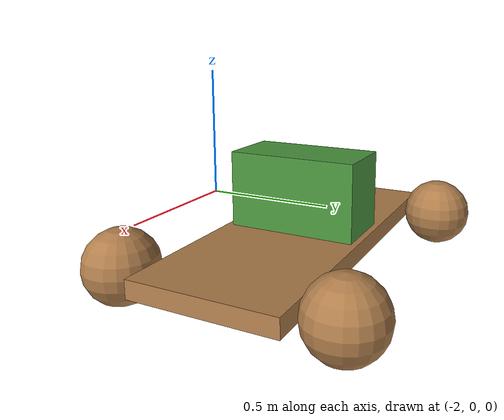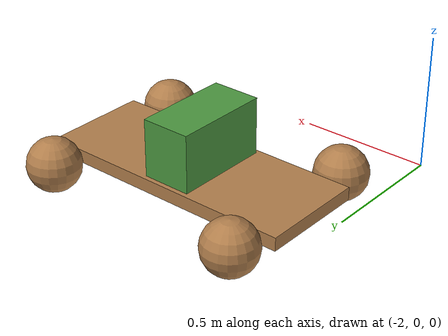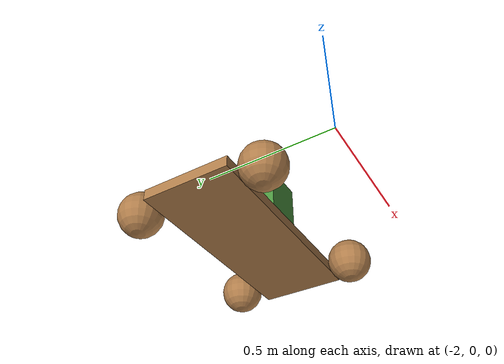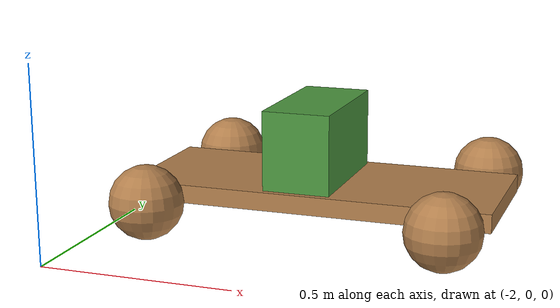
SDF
<?xml version='1.0'?>
<sdf version='1.6'>
  <model name='myRob'>
    <link name='base'>
      <pose frame=''>-1.48306 0.642455 0.078333 0 -0 0</pose>
      <inertial>
        <mass>1</mass>
        <inertia>
          <ixx>0.166667</ixx>
          <ixy>0</ixy>
          <ixz>0</ixz>
          <iyy>0.166667</iyy>
          <iyz>0</iyz>
          <izz>0.166667</izz>
        </inertia>
        <pose frame=''>0 0 0.1 0 -0 0</pose>
      </inertial>
      <gravity>1</gravity>
      <self_collide>0</self_collide>
      <kinematic>0</kinematic>
      <visual name='visual'>
        <pose frame=''>0 0 0 0 -0 0</pose>
        <geometry>
          <box>
            <size>1 0.4 0.05</size>
          </box>
        </geometry>

        <material>
          <lighting>1</lighting>
          <script>
            <uri>file://media/materials/scripts/gazebo.material</uri>
            <name>Gazebo/WoodPallet</name>
          </script>
          <shader type='pixel'>
            <normal_map>__default__</normal_map>
          </shader>
          <ambient>0.3 0.3 0.3 1</ambient>
          <diffuse>0.7 0.7 0.7 1</diffuse>
          <specular>0.01 0.01 0.01 1</specular>
          <emissive>0 0 0 1</emissive>
        </material>
        <transparency>0</transparency>
        <cast_shadows>1</cast_shadows>
      </visual>
      <collision name='collision'>
        <laser_retro>0</laser_retro>
        <max_contacts>10</max_contacts>
        <pose frame=''>0 0 -0 0 -0 0</pose>
        <geometry>
          <box>
            <size>1 0.4 0.05</size>
          </box>
        </geometry>
        <surface>
          <friction>
            <ode>
              <mu>1</mu>
              <mu2>1</mu2>
              <fdir1>0 0 0</fdir1>
              <slip1>0</slip1>
              <slip2>0</slip2>
            </ode>
            <torsional>
              <coefficient>1</coefficient>
              <patch_radius>0</patch_radius>
              <surface_radius>0</surface_radius>
              <use_patch_radius>1</use_patch_radius>
              <ode>
                <slip>0</slip>
              </ode>
            </torsional>
          </friction>
          <bounce>
            <restitution_coefficient>0</restitution_coefficient>
            <threshold>1e+06</threshold>
          </bounce>
          <contact>
            <collide_without_contact>0</collide_without_contact>
            <collide_without_contact_bitmask>1</collide_without_contact_bitmask>
            <collide_bitmask>1</collide_bitmask>
            <ode>
              <soft_cfm>0</soft_cfm>
              <soft_erp>0.2</soft_erp>
              <kp>1e+13</kp>
              <kd>1</kd>
              <max_vel>0.01</max_vel>
              <min_depth>0</min_depth>
            </ode>
            <bullet>
              <split_impulse>1</split_impulse>
              <split_impulse_penetration_threshold>-0.01</split_impulse_penetration_threshold>
              <soft_cfm>0</soft_cfm>
              <soft_erp>0.2</soft_erp>
              <kp>1e+13</kp>
              <kd>1</kd>
            </bullet>
          </contact>
        </surface>
      </collision>
    </link>
    <link name='wheel_ReL'>
      <pose frame=''>-1.88306 0.942455 0.078333 0 -0 0</pose>
      <inertial>
        <mass>1</mass>
        <inertia>
          <ixx>0.1</ixx>
          <ixy>0</ixy>
          <ixz>0</ixz>
          <iyy>0.1</iyy>
          <iyz>0</iyz>
          <izz>0.1</izz>
        </inertia>
        <pose frame=''>0 0 0 0 -0 0</pose>
      </inertial>
      <gravity>1</gravity>
      <self_collide>0</self_collide>
      <kinematic>0</kinematic>
      <visual name='visual'>
        <pose frame=''>0 0 0 0 -0 0</pose>
        <geometry>
          <sphere>
            <radius>0.1</radius>
          </sphere>
        </geometry>
        <material>
          <lighting>1</lighting>
          <script>
            <uri>file://media/materials/scripts/gazebo.material</uri>
            <name>Gazebo/Wood</name>
          </script>
          <shader type='pixel'>
            <normal_map>__default__</normal_map>
          </shader>
          <ambient>0.3 0.3 0.3 1</ambient>
          <diffuse>0.7 0.7 0.7 1</diffuse>
          <specular>0.01 0.01 0.01 1</specular>
          <emissive>0 0 0 1</emissive>
        </material>
        <transparency>0</transparency>
        <cast_shadows>1</cast_shadows>
      </visual>
      <collision name='collision'>
        <laser_retro>0</laser_retro>
        <max_contacts>10</max_contacts>
        <pose frame=''>0 0 0 0 -0 0</pose>
        <geometry>
          <sphere>
            <radius>0.1</radius>
          </sphere>
        </geometry>
        <surface>
          <friction>
            <ode>
              <mu>1</mu>
              <mu2>1</mu2>
              <fdir1>0 0 0</fdir1>
              <slip1>0</slip1>
              <slip2>0</slip2>
            </ode>
            <torsional>
              <coefficient>1</coefficient>
              <patch_radius>0</patch_radius>
              <surface_radius>0</surface_radius>
              <use_patch_radius>1</use_patch_radius>
              <ode>
                <slip>0</slip>
              </ode>
            </torsional>
          </friction>
          <bounce>
            <restitution_coefficient>0</restitution_coefficient>
            <threshold>1e+06</threshold>
          </bounce>
          <contact>
            <collide_without_contact>0</collide_without_contact>
            <collide_without_contact_bitmask>1</collide_without_contact_bitmask>
            <collide_bitmask>1</collide_bitmask>
            <ode>
              <soft_cfm>0</soft_cfm>
              <soft_erp>0.2</soft_erp>
              <kp>1e+13</kp>
              <kd>1</kd>
              <max_vel>0.01</max_vel>
              <min_depth>0</min_depth>
            </ode>
            <bullet>
              <split_impulse>1</split_impulse>
              <split_impulse_penetration_threshold>-0.01</split_impulse_penetration_threshold>
              <soft_cfm>0</soft_cfm>
              <soft_erp>0.2</soft_erp>
              <kp>1e+13</kp>
              <kd>1</kd>
            </bullet>
          </contact>
        </surface>
      </collision>
    </link>
    <link name='wheel_FrL'>
      <pose frame=''>-1.08306 0.942455 0.078333 0 -0 0</pose>
      <inertial>
        <mass>1</mass>
        <inertia>
          <ixx>0.1</ixx>
          <ixy>0</ixy>
          <ixz>0</ixz>
          <iyy>0.1</iyy>
          <iyz>0</iyz>
          <izz>0.1</izz>
        </inertia>
        <pose frame=''>0 0 0 0 -0 0</pose>
      </inertial>
      <self_collide>0</self_collide>
      <kinematic>0</kinematic>
      <visual name='visual'>
        <pose frame=''>0 0 0 0 -0 0</pose>
        <geometry>
          <sphere>
            <radius>0.1</radius>
          </sphere>
        </geometry>
        <material>
          <lighting>1</lighting>
          <script>
            <uri>file://media/materials/scripts/gazebo.material</uri>
            <name>Gazebo/Wood</name>
          </script>
          <shader type='pixel'>
            <normal_map>__default__</normal_map>
          </shader>
          <ambient>0.3 0.3 0.3 1</ambient>
          <diffuse>0.7 0.7 0.7 1</diffuse>
          <specular>0.01 0.01 0.01 1</specular>
          <emissive>0 0 0 1</emissive>
        </material>
        <transparency>0</transparency>
        <cast_shadows>1</cast_shadows>
      </visual>
      <collision name='collision'>
        <laser_retro>0</laser_retro>
        <max_contacts>10</max_contacts>
        <pose frame=''>0 0 0 0 -0 0</pose>
        <geometry>
          <sphere>
            <radius>0.1</radius>
          </sphere>
        </geometry>
        <surface>
          <friction>
            <ode>
              <mu>1</mu>
              <mu2>1</mu2>
              <fdir1>0 0 0</fdir1>
              <slip1>0</slip1>
              <slip2>0</slip2>
            </ode>
            <torsional>
              <coefficient>1</coefficient>
              <patch_radius>0</patch_radius>
              <surface_radius>0</surface_radius>
              <use_patch_radius>1</use_patch_radius>
              <ode>
                <slip>0</slip>
              </ode>
            </torsional>
          </friction>
          <bounce>
            <restitution_coefficient>0</restitution_coefficient>
            <threshold>1e+06</threshold>
          </bounce>
          <contact>
            <collide_without_contact>0</collide_without_contact>
            <collide_without_contact_bitmask>1</collide_without_contact_bitmask>
            <collide_bitmask>1</collide_bitmask>
            <ode>
              <soft_cfm>0</soft_cfm>
              <soft_erp>0.2</soft_erp>
              <kp>1e+13</kp>
              <kd>1</kd>
              <max_vel>0.01</max_vel>
              <min_depth>0</min_depth>
            </ode>
            <bullet>
              <split_impulse>1</split_impulse>
              <split_impulse_penetration_threshold>-0.01</split_impulse_penetration_threshold>
              <soft_cfm>0</soft_cfm>
              <soft_erp>0.2</soft_erp>
              <kp>1e+13</kp>
              <kd>1</kd>
            </bullet>
          </contact>
        </surface>
      </collision>
    </link>
    <link name='wheel_FrR'>
      <pose frame=''>-1.08306 0.342455 0.078333 0 -0 0</pose>
      <inertial>
        <mass>1</mass>
        <inertia>
          <ixx>0.1</ixx>
          <ixy>0</ixy>
          <ixz>0</ixz>
          <iyy>0.1</iyy>
          <iyz>0</iyz>
          <izz>0.1</izz>
        </inertia>
        <pose frame=''>0 0 0 0 -0 0</pose>
      </inertial>
      <self_collide>0</self_collide>
      <kinematic>0</kinematic>
      <visual name='visual'>
        <pose frame=''>0 0 0 0 -0 0</pose>
        <geometry>
          <sphere>
            <radius>0.1</radius>
          </sphere>
        </geometry>
        <material>
          <lighting>1</lighting>
          <script>
            <uri>file://media/materials/scripts/gazebo.material</uri>
            <name>Gazebo/Wood</name>
          </script>
          <shader type='pixel'>
            <normal_map>__default__</normal_map>
          </shader>
          <ambient>0.3 0.3 0.3 1</ambient>
          <diffuse>0.7 0.7 0.7 1</diffuse>
          <specular>0.01 0.01 0.01 1</specular>
          <emissive>0 0 0 1</emissive>
        </material>
        <transparency>0</transparency>
        <cast_shadows>1</cast_shadows>
      </visual>
      <collision name='collision'>
        <laser_retro>0</laser_retro>
        <max_contacts>10</max_contacts>
        <pose frame=''>0 0 0 0 -0 0</pose>
        <geometry>
          <sphere>
            <radius>0.1</radius>
          </sphere>
        </geometry>
        <surface>
          <friction>
            <ode>
              <mu>1</mu>
              <mu2>1</mu2>
              <fdir1>0 0 0</fdir1>
              <slip1>0</slip1>
              <slip2>0</slip2>
            </ode>
            <torsional>
              <coefficient>1</coefficient>
              <patch_radius>0</patch_radius>
              <surface_radius>0</surface_radius>
              <use_patch_radius>1</use_patch_radius>
              <ode>
                <slip>0</slip>
              </ode>
            </torsional>
          </friction>
          <bounce>
            <restitution_coefficient>0</restitution_coefficient>
            <threshold>1e+06</threshold>
          </bounce>
          <contact>
            <collide_without_contact>0</collide_without_contact>
            <collide_without_contact_bitmask>1</collide_without_contact_bitmask>
            <collide_bitmask>1</collide_bitmask>
            <ode>
              <soft_cfm>0</soft_cfm>
              <soft_erp>0.2</soft_erp>
              <kp>1e+13</kp>
              <kd>1</kd>
              <max_vel>0.01</max_vel>
              <min_depth>0</min_depth>
            </ode>
            <bullet>
              <split_impulse>1</split_impulse>
              <split_impulse_penetration_threshold>-0.01</split_impulse_penetration_threshold>
              <soft_cfm>0</soft_cfm>
              <soft_erp>0.2</soft_erp>
              <kp>1e+13</kp>
              <kd>1</kd>
            </bullet>
          </contact>
        </surface>
      </collision>
    </link>
    <link name='wheel_ReR'>
      <pose frame=''>-1.88306 0.342455 0.078333 0 -0 0</pose>
      <inertial>
        <mass>1</mass>
        <inertia>
          <ixx>0.1</ixx>
          <ixy>0</ixy>
          <ixz>0</ixz>
          <iyy>0.1</iyy>
          <iyz>0</iyz>
          <izz>0.1</izz>
        </inertia>
        <pose frame=''>0 0 0 0 -0 0</pose>
      </inertial>
      <self_collide>0</self_collide>
      <kinematic>0</kinematic>
      <visual name='visual'>
        <pose frame=''>0 0 0 0 -0 0</pose>
        <geometry>
          <sphere>
            <radius>0.1</radius>
          </sphere>
        </geometry>
        <material>
          <lighting>1</lighting>
          <script>
            <uri>file://media/materials/scripts/gazebo.material</uri>
            <name>Gazebo/Wood</name>
          </script>
          <shader type='pixel'>
            <normal_map>__default__</normal_map>
          </shader>
          <ambient>0.3 0.3 0.3 1</ambient>
          <diffuse>0.7 0.7 0.7 1</diffuse>
          <specular>0.01 0.01 0.01 1</specular>
          <emissive>0 0 0 1</emissive>
        </material>
        <transparency>0</transparency>
        <cast_shadows>1</cast_shadows>
      </visual>
      <collision name='collision'>
        <laser_retro>0</laser_retro>
        <max_contacts>10</max_contacts>
        <pose frame=''>0 0 0 0 -0 0</pose>
        <geometry>
          <sphere>
            <radius>0.1</radius>
          </sphere>
        </geometry>
        <surface>
          <friction>
            <ode>
              <mu>1</mu>
              <mu2>1</mu2>
              <fdir1>0 0 0</fdir1>
              <slip1>0</slip1>
              <slip2>0</slip2>
            </ode>
            <torsional>
              <coefficient>1</coefficient>
              <patch_radius>0</patch_radius>
              <surface_radius>0</surface_radius>
              <use_patch_radius>1</use_patch_radius>
              <ode>
                <slip>0</slip>
              </ode>
            </torsional>
          </friction>
          <bounce>
            <restitution_coefficient>0</restitution_coefficient>
            <threshold>1e+06</threshold>
          </bounce>
          <contact>
            <collide_without_contact>0</collide_without_contact>
            <collide_without_contact_bitmask>1</collide_without_contact_bitmask>
            <collide_bitmask>1</collide_bitmask>
            <ode>
              <soft_cfm>0</soft_cfm>
              <soft_erp>0.2</soft_erp>
              <kp>1e+13</kp>
              <kd>1</kd>
              <max_vel>0.01</max_vel>
              <min_depth>0</min_depth>
            </ode>
            <bullet>
              <split_impulse>1</split_impulse>
              <split_impulse_penetration_threshold>-0.01</split_impulse_penetration_threshold>
              <soft_cfm>0</soft_cfm>
              <soft_erp>0.2</soft_erp>
              <kp>1e+13</kp>
              <kd>1</kd>
            </bullet>
          </contact>
        </surface>
      </collision>
    </link>
    <link name='tower'>
      <pose frame=''>-1.50688 0.642455 0.208333 0 -0 0</pose>
      <inertial>
        <mass>0.002998</mass>
        <inertia>
          <ixx>4.56303e-05</ixx>
          <ixy>0</ixy>
          <ixz>0</ixz>
          <iyy>2.08784e-05</iyy>
          <iyz>0</iyz>
          <izz>4.18015e-05</izz>
        </inertia>
        <pose frame=''>0 0 0 0 -0 0</pose>
      </inertial>
      <gravity>1</gravity>
      <self_collide>0</self_collide>
      <kinematic>0</kinematic>
      <visual name='visual'>
        <pose frame=''>0 0 0 0 -0 0</pose>
        <geometry>
          <box>
            <size>0.184722 0.36496 0.222368</size>
          </box>
        </geometry>
        <material>
          <lighting>1</lighting>
          <script>
            <uri>file://media/materials/scripts/gazebo.material</uri>
            <name>Gazebo/Grass</name>
          </script>
          <shader type='pixel'>
            <normal_map>__default__</normal_map>
          </shader>
          <ambient>0.3 0.3 0.3 1</ambient>
          <diffuse>0.7 0.7 0.7 1</diffuse>
          <specular>0.01 0.01 0.01 1</specular>
          <emissive>0 0 0 1</emissive>
        </material>
        <transparency>0</transparency>
        <cast_shadows>1</cast_shadows>
      </visual>
      <collision name='collision'>
        <laser_retro>0</laser_retro>
        <max_contacts>10</max_contacts>
        <pose frame=''>0 0 0 0 -0 0</pose>
        <geometry>
          <box>
            <size>0.184722 0.36496 0.222368</size>
          </box>
        </geometry>
        <surface>
          <friction>
            <ode>
              <mu>1</mu>
              <mu2>1</mu2>
              <fdir1>0 0 0</fdir1>
              <slip1>0</slip1>
              <slip2>0</slip2>
            </ode>
            <torsional>
              <coefficient>1</coefficient>
              <patch_radius>0</patch_radius>
              <surface_radius>0</surface_radius>
              <use_patch_radius>1</use_patch_radius>
              <ode>
                <slip>0</slip>
              </ode>
            </torsional>
          </friction>
          <bounce>
            <restitution_coefficient>0</restitution_coefficient>
            <threshold>1e+06</threshold>
          </bounce>
          <contact>
            <collide_without_contact>0</collide_without_contact>
            <collide_without_contact_bitmask>1</collide_without_contact_bitmask>
            <collide_bitmask>1</collide_bitmask>
            <ode>
              <soft_cfm>0</soft_cfm>
              <soft_erp>0.2</soft_erp>
              <kp>1e+13</kp>
              <kd>1</kd>
              <max_vel>0.01</max_vel>
              <min_depth>0</min_depth>
            </ode>
            <bullet>
              <split_impulse>1</split_impulse>
              <split_impulse_penetration_threshold>-0.01</split_impulse_penetration_threshold>
              <soft_cfm>0</soft_cfm>
              <soft_erp>0.2</soft_erp>
              <kp>1e+13</kp>
              <kd>1</kd>
            </bullet>
          </contact>
        </surface>
      </collision>
    </link>
    <joint name='base_JOINT_15' type='revolute'>
      <parent>base</parent>
      <child>wheel_ReL</child>
      <pose frame=''>0 0 0 0 -0 0</pose>
      <axis>
        <xyz>0 1 0</xyz>
        <use_parent_model_frame>0</use_parent_model_frame>
        <limit>
          <lower>-1.79769e+308</lower>
          <upper>1.79769e+308</upper>
          <effort>-1</effort>
          <velocity>-1</velocity>
        </limit>
        <dynamics>
          <spring_reference>0</spring_reference>
          <spring_stiffness>0</spring_stiffness>
          <damping>0</damping>
          <friction>0</friction>
        </dynamics>
      </axis>
      <physics>
        <ode>
          <limit>
            <cfm>0</cfm>
            <erp>0.2</erp>
          </limit>
          <suspension>
            <cfm>0</cfm>
            <erp>0.2</erp>
          </suspension>
        </ode>
      </physics>
    </joint>
    <joint name='base_JOINT_16' type='revolute'>
      <parent>base</parent>
      <child>wheel_FrL</child>
      <pose frame=''>0 0 0 0 -0 0</pose>
      <axis>
        <xyz>0 1 0</xyz>
        <use_parent_model_frame>0</use_parent_model_frame>
        <limit>
          <lower>-1.79769e+308</lower>
          <upper>1.79769e+308</upper>
          <effort>-1</effort>
          <velocity>-1</velocity>
        </limit>
        <dynamics>
          <spring_reference>0</spring_reference>
          <spring_stiffness>0</spring_stiffness>
          <damping>0</damping>
        </dynamics>
      </axis>
      <physics>
        <ode>
          <limit>
            <cfm>0</cfm>
            <erp>0.2</erp>
          </limit>
          <suspension>
            <cfm>0</cfm>
            <erp>0.2</erp>
          </suspension>
        </ode>
      </physics>
    </joint>
    <joint name='base_JOINT_17' type='revolute'>
      <parent>base</parent>
      <child>wheel_FrR</child>
      <pose frame=''>0 0 0 0 -0 0</pose>
      <axis>
        <xyz>0 1 0</xyz>
        <use_parent_model_frame>0</use_parent_model_frame>
        <limit>
          <lower>-1.79769e+308</lower>
          <upper>1.79769e+308</upper>
          <effort>-1</effort>
          <velocity>-1</velocity>
        </limit>
        <dynamics>
          <spring_reference>0</spring_reference>
          <spring_stiffness>0</spring_stiffness>
          <damping>0</damping>
        </dynamics>
      </axis>
      <physics>
        <ode>
          <limit>
            <cfm>0</cfm>
            <erp>0.2</erp>
          </limit>
          <suspension>
            <cfm>0</cfm>
            <erp>0.2</erp>
          </suspension>
        </ode>
      </physics>
    </joint>
    <joint name='base_JOINT_18' type='revolute'>
      <parent>base</parent>
      <child>wheel_ReR</child>
      <pose frame=''>0 0 0 0 -0 0</pose>
      <axis>
        <xyz>0 1 0</xyz>
        <use_parent_model_frame>0</use_parent_model_frame>
        <limit>
          <lower>-1.79769e+308</lower>
          <upper>1.79769e+308</upper>
          <effort>-1</effort>
          <velocity>-1</velocity>
        </limit>
        <dynamics>
          <spring_reference>0</spring_reference>
          <spring_stiffness>0</spring_stiffness>
          <damping>0</damping>
        </dynamics>
      </axis>
      <physics>
        <ode>
          <limit>
            <cfm>0</cfm>
            <erp>0.2</erp>
          </limit>
          <suspension>
            <cfm>0</cfm>
            <erp>0.2</erp>
          </suspension>
        </ode>
      </physics>
    </joint>
    <joint name='base_JOINT_19' type='fixed'>
      <parent>base</parent>
      <child>tower</child>
      <pose frame=''>0 0 0 0 -0 0</pose>
      <physics>
        <ode>
          <limit>
            <cfm>0</cfm>
            <erp>0.2</erp>
          </limit>
          <suspension>
            <cfm>0</cfm>
            <erp>0.2</erp>
          </suspension>
        </ode>
      </physics>
    </joint>
    <static>0</static>
    <allow_auto_disable>1</allow_auto_disable>
  </model>
</sdf>
